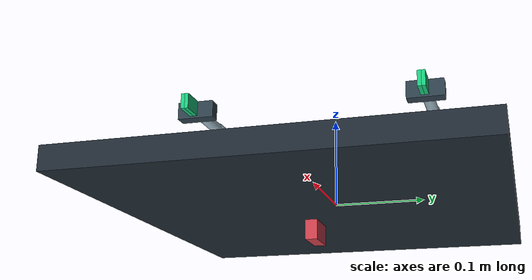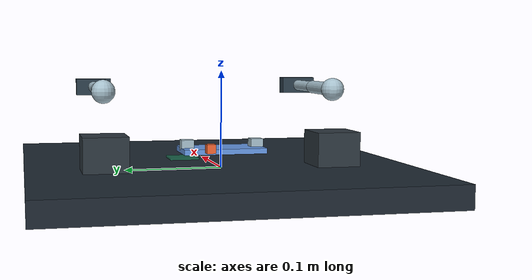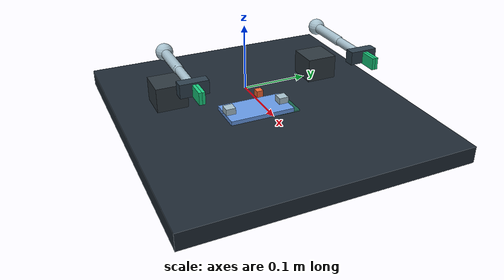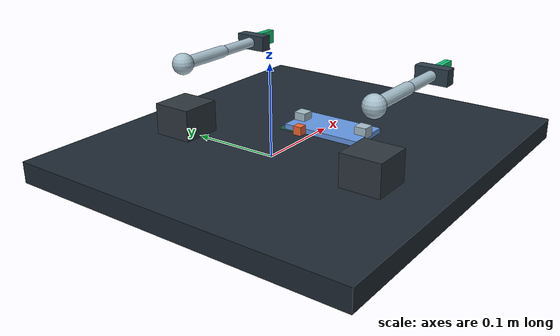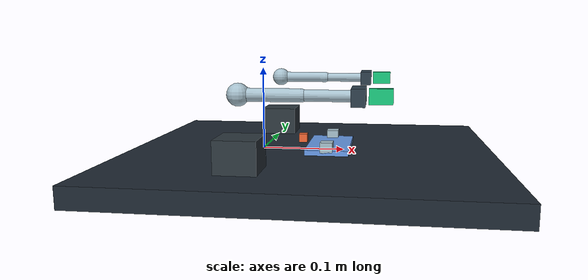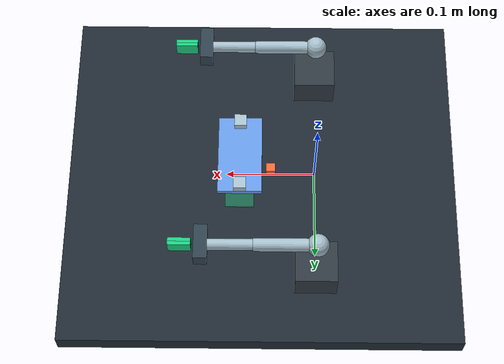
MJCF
<mujoco model="md-arm-t1-arms-co-carry-v1">
      <compiler angle="radian"/>
      <option timestep="0.002" gravity="0 0 -9.81" integrator="implicitfast" cone="elliptic" iterations="60"/>
      <visual><global offwidth="1280" offheight="720"/><quality shadowsize="1024"/></visual>
      <default><joint damping=".03" armature=".00003"/>
        <geom friction="1 .005 .0001" solref=".006 1" solimp=".95 .99 .001" rgba=".65 .75 .8 1"/>
        <position ctrllimited="false" forcelimited="true"/></default>
      <worldbody>
        <light pos="0 -.3 .8" dir="0 .3 -.8"/>
        <camera name="overview" pos=".36 -.38 .30" xyaxes=".72 .69 0 -.32 .34 .88"/>
        <camera name="top" pos=".07 0 .48" xyaxes="1 0 0 0 1 0"/>
        <geom name="table" type="box" pos=".06 0 -.012" size=".22 .20 .012" rgba=".12 .16 .20 1"/>

    <body name="left_base" pos="0 -0.121 0">
      <geom name="left_mount" type="box" pos="0 0 .018" size=".023 .023 .018" mass=".08" rgba=".18 .22 .25 1"/>
      <body name="left_yaw" pos="0 0 0.08">
        <joint name="left_base_yaw" axis="0 0 1" range="-1.745 1.745"/>
        <geom type="sphere" size=".012" mass=".018"/>
        <body name="left_shoulder">
          <joint name="left_shoulder_pitch" axis="0 1 0" range="-1.047 1.396"/>
          <geom name="left_upper" type="capsule" fromto="0 0 0 .065 0 0" size=".007" mass=".038"/>
          <body name="left_elbow" pos=".065 0 0">
            <joint name="left_elbow_pitch" axis="0 1 0" range="-1.745 1.745"/>
            <geom name="left_forearm" type="capsule" fromto="0 0 0 .055 0 0" size=".006" mass=".033"/>
            <body name="left_wrist" pos=".055 0 0">
              <joint name="left_wrist_pitch" axis="0 1 0" range="-1.571 1.571"/>
              <geom type="sphere" size=".007" mass=".018"/>
              <body name="left_hand">
                <joint name="left_wrist_roll" axis="1 0 0" range="-1.571 1.571"/>
                <geom name="left_palm" type="box" pos=".003 0 0" size=".007 .019 .009" mass=".026" rgba=".18 .25 .3 1"/>
                <site name="left_tcp" pos=".030 0 0" size=".002" rgba="0 1 .5 1"/>
                <body name="left_finger_left" pos="0 .002 0">
                  <joint name="left_grip_left" type="slide" axis="0 1 0" range="0 .015" damping=".8" armature=".0001"/>
                  <geom name="left_pad_left" type="box" pos=".025 0 0" size=".012 .002 .008" mass=".004" condim="4" friction="1.2 .005 .001" rgba=".1 .8 .5 1"/>
                </body>
                <body name="left_finger_right" pos="0 -.002 0">
                  <joint name="left_grip_right" type="slide" axis="0 -1 0" range="0 .015" damping=".8" armature=".0001"/>
                  <geom name="left_pad_right" type="box" pos=".025 0 0" size=".012 .002 .008" mass=".004" condim="4" friction="1.2 .005 .001" rgba=".1 .8 .5 1"/>
                </body>
              </body>
            </body>
          </body>
        </body>
      </body>
    </body>
    <body name="right_base" pos="0 0.121 0">
      <geom name="right_mount" type="box" pos="0 0 .018" size=".023 .023 .018" mass=".08" rgba=".18 .22 .25 1"/>
      <body name="right_yaw" pos="0 0 0.08">
        <joint name="right_base_yaw" axis="0 0 1" range="-1.745 1.745"/>
        <geom type="sphere" size=".012" mass=".018"/>
        <body name="right_shoulder">
          <joint name="right_shoulder_pitch" axis="0 1 0" range="-1.047 1.396"/>
          <geom name="right_upper" type="capsule" fromto="0 0 0 .065 0 0" size=".007" mass=".038"/>
          <body name="right_elbow" pos=".065 0 0">
            <joint name="right_elbow_pitch" axis="0 1 0" range="-1.745 1.745"/>
            <geom name="right_forearm" type="capsule" fromto="0 0 0 .055 0 0" size=".006" mass=".033"/>
            <body name="right_wrist" pos=".055 0 0">
              <joint name="right_wrist_pitch" axis="0 1 0" range="-1.571 1.571"/>
              <geom type="sphere" size=".007" mass=".018"/>
              <body name="right_hand">
                <joint name="right_wrist_roll" axis="1 0 0" range="-1.571 1.571"/>
                <geom name="right_palm" type="box" pos=".003 0 0" size=".007 .019 .009" mass=".026" rgba=".18 .25 .3 1"/>
                <site name="right_tcp" pos=".030 0 0" size=".002" rgba="0 1 .5 1"/>
                <body name="right_finger_left" pos="0 .002 0">
                  <joint name="right_grip_left" type="slide" axis="0 1 0" range="0 .015" damping=".8" armature=".0001"/>
                  <geom name="right_pad_left" type="box" pos=".025 0 0" size=".012 .002 .008" mass=".004" condim="4" friction="1.2 .005 .001" rgba=".1 .8 .5 1"/>
                </body>
                <body name="right_finger_right" pos="0 -.002 0">
                  <joint name="right_grip_right" type="slide" axis="0 -1 0" range="0 .015" damping=".8" armature=".0001"/>
                  <geom name="right_pad_right" type="box" pos=".025 0 0" size=".012 .002 .008" mass=".004" condim="4" friction="1.2 .005 .001" rgba=".1 .8 .5 1"/>
                </body>
              </body>
            </body>
          </body>
        </body>
      </body>
    </body>
        <body name="object" pos=".085 -.02 .009"><freejoint name="object_free"/><geom name="object_tray" type="box" size=".025 .047 .003" mass=".008" rgba=".4 .6 .9 1"/>
        <geom name="object_handle_left" type="box" pos="0 -.04 .006" size=".007 .007 .006" mass=".002"/>
        <geom name="object_handle_right" type="box" pos="0 .04 .006" size=".007 .007 .006" mass=".002"/></body>
        <body name="payload" pos=".05 0 .014"><freejoint name="payload_free"/><geom name="payload_geom" type="box" size=".005 .005 .005" mass=".005" rgba=".95 .4 .2 1"/></body>
        <body name="obstacle" pos=".09 0 -.05"><geom name="obstacle_geom" type="box" size=".018 .006 .01" rgba=".8 .25 .3 1"/></body>
        <site name="goal" type="box" pos=".085 .025 .001" size=".016 .016 .001" rgba=".1 .85 .5 .35"/>
      </worldbody>
      <contact><exclude body1="left_elbow" body2="left_hand"/><exclude body1="right_elbow" body2="right_hand"/></contact>
      <equality><joint joint1="left_grip_right" joint2="left_grip_left" polycoef="0 1 0 0 0" solref=".004 1"/><joint joint1="right_grip_right" joint2="right_grip_left" polycoef="0 1 0 0 0" solref=".004 1"/></equality>
      <actuator><position name="left_base_yaw_servo" joint="left_base_yaw" kp="8" kv=".15" forcerange="-.16 .16"/><position name="left_shoulder_pitch_servo" joint="left_shoulder_pitch" kp="8" kv=".15" forcerange="-.16 .16"/><position name="left_elbow_pitch_servo" joint="left_elbow_pitch" kp="8" kv=".15" forcerange="-.16 .16"/><position name="left_wrist_pitch_servo" joint="left_wrist_pitch" kp="8" kv=".15" forcerange="-.16 .16"/><position name="left_wrist_roll_servo" joint="left_wrist_roll" kp="8" kv=".15" forcerange="-.16 .16"/><position name="left_grip_servo" joint="left_grip_left" kp="350" kv="2" ctrlrange="0 .015" forcerange="-1 1"/><position name="right_base_yaw_servo" joint="right_base_yaw" kp="8" kv=".15" forcerange="-.16 .16"/><position name="right_shoulder_pitch_servo" joint="right_shoulder_pitch" kp="8" kv=".15" forcerange="-.16 .16"/><position name="right_elbow_pitch_servo" joint="right_elbow_pitch" kp="8" kv=".15" forcerange="-.16 .16"/><position name="right_wrist_pitch_servo" joint="right_wrist_pitch" kp="8" kv=".15" forcerange="-.16 .16"/><position name="right_wrist_roll_servo" joint="right_wrist_roll" kp="8" kv=".15" forcerange="-.16 .16"/><position name="right_grip_servo" joint="right_grip_left" kp="350" kv="2" ctrlrange="0 .015" forcerange="-1 1"/></actuator>
    </mujoco>
